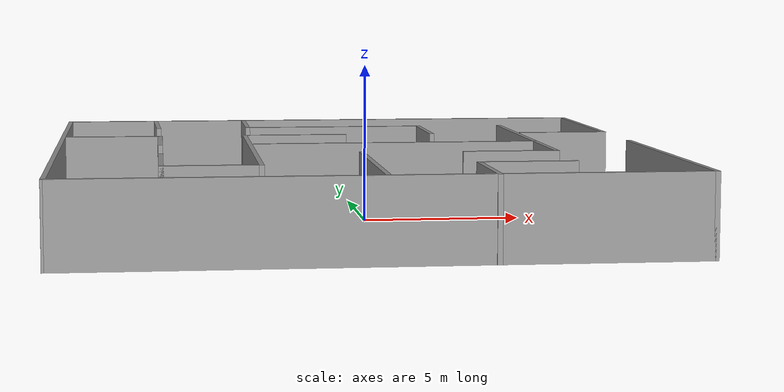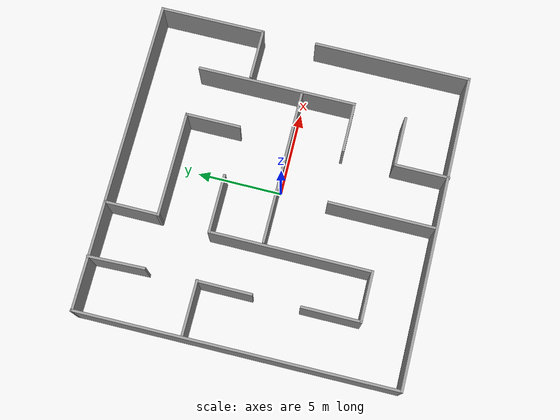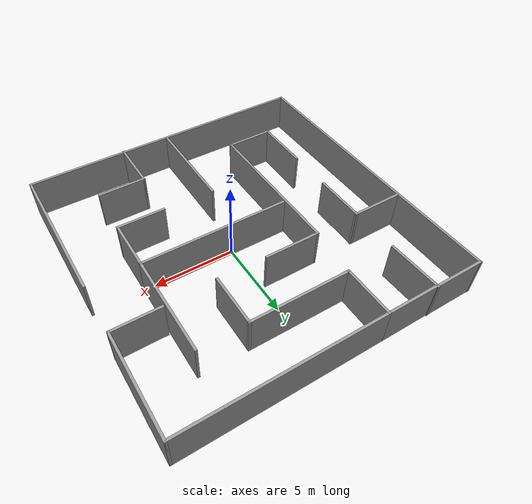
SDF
<?xml version='1.0'?>
<sdf version='1.7'>
  <model name='maze'>
    <pose>-0.530015 0.133481 0 0 -0 0</pose>
    <link name='Wall_10'>
      <collision name='Wall_10_Collision'>
        <geometry>
          <box>
            <size>3.25 0.15 2.5</size>
          </box>
        </geometry>
        <pose>0 0 1.25 0 -0 0</pose>
      </collision>
      <visual name='Wall_10_Visual'>
        <pose>0 0 1.25 0 -0 0</pose>
        <geometry>
          <box>
            <size>3.25 0.15 2.5</size>
          </box>
        </geometry>
        <material>
          <script>
            <uri>file://media/materials/scripts/gazebo.material</uri>
            <name>Gazebo/Grey</name>
          </script>
          <ambient>1 1 1 1</ambient>
        </material>
        <meta>
          <layer>0</layer>
        </meta>
      </visual>
      <pose>-7.67452 9.2343 0 0 -0 0</pose>
    </link>
    <link name='Wall_11'>
      <collision name='Wall_11_Collision'>
        <geometry>
          <box>
            <size>3.37086 0.15 2.5</size>
          </box>
        </geometry>
        <pose>0 0 1.25 0 -0 0</pose>
      </collision>
      <visual name='Wall_11_Visual'>
        <pose>0 0 1.25 0 -0 0</pose>
        <geometry>
          <box>
            <size>3.37086 0.15 2.5</size>
          </box>
        </geometry>
        <material>
          <script>
            <uri>file://media/materials/scripts/gazebo.material</uri>
            <name>Gazebo/Grey</name>
          </script>
          <ambient>1 1 1 1</ambient>
        </material>
        <meta>
          <layer>0</layer>
        </meta>
      </visual>
      <pose>-6.0748 7.64452 0 0 -0 -1.53992</pose>
    </link>
    <link name='Wall_14'>
      <collision name='Wall_14_Collision'>
        <geometry>
          <box>
            <size>3.25 0.15 2.5</size>
          </box>
        </geometry>
        <pose>0 0 1.25 0 -0 0</pose>
      </collision>
      <visual name='Wall_14_Visual'>
        <pose>0 0 1.25 0 -0 0</pose>
        <geometry>
          <box>
            <size>3.25 0.15 2.5</size>
          </box>
        </geometry>
        <material>
          <script>
            <uri>file://media/materials/scripts/gazebo.material</uri>
            <name>Gazebo/Grey</name>
          </script>
          <ambient>1 1 1 1</ambient>
        </material>
        <meta>
          <layer>0</layer>
        </meta>
      </visual>
      <pose>-7.52856 3.02065 0 0 -0 0</pose>
    </link>
    <link name='Wall_17'>
      <collision name='Wall_17_Collision'>
        <geometry>
          <box>
            <size>3.25 0.15 2.5</size>
          </box>
        </geometry>
        <pose>0 0 1.25 0 -0 0</pose>
      </collision>
      <visual name='Wall_17_Visual'>
        <pose>0 0 1.25 0 -0 0</pose>
        <geometry>
          <box>
            <size>3.25 0.15 2.5</size>
          </box>
        </geometry>
        <material>
          <script>
            <uri>file://media/materials/scripts/gazebo.material</uri>
            <name>Gazebo/Grey</name>
          </script>
          <ambient>1 1 1 1</ambient>
        </material>
        <meta>
          <layer>0</layer>
        </meta>
      </visual>
      <pose>-5.99647 1.47898 0 0 -0 -1.5708</pose>
    </link>
    <link name='Wall_19'>
      <collision name='Wall_19_Collision'>
        <geometry>
          <box>
            <size>3.25 0.15 2.5</size>
          </box>
        </geometry>
        <pose>0 0 1.25 0 -0 0</pose>
      </collision>
      <visual name='Wall_19_Visual'>
        <pose>0 0 1.25 0 -0 0</pose>
        <geometry>
          <box>
            <size>3.25 0.15 2.5</size>
          </box>
        </geometry>
        <material>
          <script>
            <uri>file://media/materials/scripts/gazebo.material</uri>
            <name>Gazebo/Grey</name>
          </script>
          <ambient>1 1 1 1</ambient>
        </material>
        <meta>
          <layer>0</layer>
        </meta>
      </visual>
      <pose>3.14644 -7.70646 0 0 -0 1.5708</pose>
    </link>
    <link name='Wall_20'>
      <collision name='Wall_20_Collision'>
        <geometry>
          <box>
            <size>3 0.15 2.5</size>
          </box>
        </geometry>
        <pose>0 0 1.25 0 -0 0</pose>
      </collision>
      <visual name='Wall_20_Visual'>
        <pose>0 0 1.25 0 -0 0</pose>
        <geometry>
          <box>
            <size>3 0.15 2.5</size>
          </box>
        </geometry>
        <material>
          <script>
            <uri>file://media/materials/scripts/gazebo.material</uri>
            <name>Gazebo/Grey</name>
          </script>
          <ambient>1 1 1 1</ambient>
        </material>
        <meta>
          <layer>0</layer>
        </meta>
      </visual>
      <pose>4.57144 -6.15646 0 0 -0 0</pose>
    </link>
    <link name='Wall_22'>
      <collision name='Wall_22_Collision'>
        <geometry>
          <box>
            <size>6.25 0.15 2.5</size>
          </box>
        </geometry>
        <pose>0 0 1.25 0 -0 0</pose>
      </collision>
      <visual name='Wall_22_Visual'>
        <pose>0 0 1.25 0 -0 0</pose>
        <geometry>
          <box>
            <size>6.25 0.15 2.5</size>
          </box>
        </geometry>
        <material>
          <script>
            <uri>file://media/materials/scripts/gazebo.material</uri>
            <name>Gazebo/Grey</name>
          </script>
          <ambient>1 1 1 1</ambient>
        </material>
        <meta>
          <layer>0</layer>
        </meta>
      </visual>
      <pose>0.104949 -6.05612 0 0 -0 1.5708</pose>
    </link>
    <link name='Wall_24'>
      <collision name='Wall_24_Collision'>
        <geometry>
          <box>
            <size>3.5 0.15 2.5</size>
          </box>
        </geometry>
        <pose>0 0 1.25 0 -0 0</pose>
      </collision>
      <visual name='Wall_24_Visual'>
        <pose>0 0 1.25 0 -0 0</pose>
        <geometry>
          <box>
            <size>3.5 0.15 2.5</size>
          </box>
        </geometry>
        <material>
          <script>
            <uri>file://media/materials/scripts/gazebo.material</uri>
            <name>Gazebo/Grey</name>
          </script>
          <ambient>1 1 1 1</ambient>
        </material>
        <meta>
          <layer>0</layer>
        </meta>
      </visual>
      <pose>-6.00384 -4.59142 0 0 -0 -1.5708</pose>
    </link>
    <link name='Wall_25'>
      <collision name='Wall_25_Collision'>
        <geometry>
          <box>
            <size>3 0.15 2.5</size>
          </box>
        </geometry>
        <pose>0 0 1.25 0 -0 0</pose>
      </collision>
      <visual name='Wall_25_Visual'>
        <pose>0 0 1.25 0 -0 0</pose>
        <geometry>
          <box>
            <size>3 0.15 2.5</size>
          </box>
        </geometry>
        <material>
          <script>
            <uri>file://media/materials/scripts/gazebo.material</uri>
            <name>Gazebo/Grey</name>
          </script>
          <ambient>1 1 1 1</ambient>
        </material>
        <meta>
          <layer>0</layer>
        </meta>
      </visual>
      <pose>-4.57884 -6.26642 0 0 -0 0</pose>
    </link>
    <link name='Wall_26'>
      <collision name='Wall_26_Collision'>
        <geometry>
          <box>
            <size>9.5 0.15 2.5</size>
          </box>
        </geometry>
        <pose>0 0 1.25 0 -0 0</pose>
      </collision>
      <visual name='Wall_26_Visual'>
        <pose>0 0 1.25 0 -0 0</pose>
        <geometry>
          <box>
            <size>9.5 0.15 2.5</size>
          </box>
        </geometry>
        <material>
          <script>
            <uri>file://media/materials/scripts/gazebo.material</uri>
            <name>Gazebo/Grey</name>
          </script>
          <ambient>1 1 1 1</ambient>
        </material>
        <meta>
          <layer>0</layer>
        </meta>
      </visual>
      <pose>-3.15384 -1.59142 0 0 -0 1.5708</pose>
    </link>
    <link name='Wall_27'>
      <collision name='Wall_27_Collision'>
        <geometry>
          <box>
            <size>3.5 0.15 2.5</size>
          </box>
        </geometry>
        <pose>0 0 1.25 0 -0 0</pose>
      </collision>
      <visual name='Wall_27_Visual'>
        <pose>0 0 1.25 0 -0 0</pose>
        <geometry>
          <box>
            <size>3.5 0.15 2.5</size>
          </box>
        </geometry>
        <material>
          <script>
            <uri>file://media/materials/scripts/gazebo.material</uri>
            <name>Gazebo/Grey</name>
          </script>
          <ambient>1 1 1 1</ambient>
        </material>
        <meta>
          <layer>0</layer>
        </meta>
      </visual>
      <pose>-1.47884 3.08358 0 0 -0 0</pose>
    </link>
    <link name='Wall_29'>
      <collision name='Wall_29_Collision'>
        <geometry>
          <box>
            <size>9.25 0.15 2.5</size>
          </box>
        </geometry>
        <pose>0 0 1.25 0 -0 0</pose>
      </collision>
      <visual name='Wall_29_Visual'>
        <pose>0 0 1.25 0 -0 0</pose>
        <geometry>
          <box>
            <size>9.25 0.15 2.5</size>
          </box>
        </geometry>
        <material>
          <script>
            <uri>file://media/materials/scripts/gazebo.material</uri>
            <name>Gazebo/Grey</name>
          </script>
          <ambient>1 1 1 1</ambient>
        </material>
        <meta>
          <layer>0</layer>
        </meta>
      </visual>
      <pose>1.58032 -0.003615 0 0 -0 0</pose>
    </link>
    <link name='Wall_30'>
      <collision name='Wall_30_Collision'>
        <geometry>
          <box>
            <size>6.25 0.15 2.5</size>
          </box>
        </geometry>
        <pose>0 0 1.25 0 -0 0</pose>
      </collision>
      <visual name='Wall_30_Visual'>
        <pose>0 0 1.25 0 -0 0</pose>
        <geometry>
          <box>
            <size>6.25 0.15 2.5</size>
          </box>
        </geometry>
        <material>
          <script>
            <uri>file://media/materials/scripts/gazebo.material</uri>
            <name>Gazebo/Grey</name>
          </script>
          <ambient>1 1 1 1</ambient>
        </material>
        <meta>
          <layer>0</layer>
        </meta>
      </visual>
      <pose>6.13033 3.04638 0 0 -0 1.5708</pose>
    </link>
    <link name='Wall_34'>
      <collision name='Wall_34_Collision'>
        <geometry>
          <box>
            <size>3.25 0.15 2.5</size>
          </box>
        </geometry>
        <pose>0 0 1.25 0 -0 0</pose>
      </collision>
      <visual name='Wall_34_Visual'>
        <pose>0 0 1.25 0 -0 0</pose>
        <geometry>
          <box>
            <size>3.25 0.15 2.5</size>
          </box>
        </geometry>
        <material>
          <script>
            <uri>file://media/materials/scripts/gazebo.material</uri>
            <name>Gazebo/Grey</name>
          </script>
          <ambient>1 1 1 1</ambient>
        </material>
        <meta>
          <layer>0</layer>
        </meta>
      </visual>
      <pose>6.13033 -1.55361 0 0 -0 -1.5708</pose>
    </link>
    <link name='Wall_35'>
      <collision name='Wall_35_Collision'>
        <geometry>
          <box>
            <size>3 0.15 2.5</size>
          </box>
        </geometry>
        <pose>0 0 1.25 0 -0 0</pose>
      </collision>
      <visual name='Wall_35_Visual'>
        <pose>0 0 1.25 0 -0 0</pose>
        <geometry>
          <box>
            <size>3 0.15 2.5</size>
          </box>
        </geometry>
        <material>
          <script>
            <uri>file://media/materials/scripts/gazebo.material</uri>
            <name>Gazebo/Grey</name>
          </script>
          <ambient>1 1 1 1</ambient>
        </material>
        <meta>
          <layer>0</layer>
        </meta>
      </visual>
      <pose>4.70533 -3.10362 0 0 -0 3.14159</pose>
    </link>
    <link name='Wall_40'>
      <collision name='Wall_40_Collision'>
        <geometry>
          <box>
            <size>3.25 0.15 2.5</size>
          </box>
        </geometry>
        <pose>0 0 1.25 0 -0 0</pose>
      </collision>
      <visual name='Wall_40_Visual'>
        <pose>0 0 1.25 0 -0 0</pose>
        <geometry>
          <box>
            <size>3.25 0.15 2.5</size>
          </box>
        </geometry>
        <material>
          <script>
            <uri>file://media/materials/scripts/gazebo.material</uri>
            <name>Gazebo/Grey</name>
          </script>
          <ambient>1 1 1 1</ambient>
        </material>
        <meta>
          <layer>0</layer>
        </meta>
      </visual>
      <pose>3.20402 4.5593 0 0 -0 1.5708</pose>
    </link>
    <link name='Wall_41'>
      <collision name='Wall_41_Collision'>
        <geometry>
          <box>
            <size>6.25 0.15 2.5</size>
          </box>
        </geometry>
        <pose>0 0 1.25 0 -0 0</pose>
      </collision>
      <visual name='Wall_41_Visual'>
        <pose>0 0 1.25 0 -0 0</pose>
        <geometry>
          <box>
            <size>6.25 0.15 2.5</size>
          </box>
        </geometry>
        <material>
          <script>
            <uri>file://media/materials/scripts/gazebo.material</uri>
            <name>Gazebo/Grey</name>
          </script>
          <ambient>1 1 1 1</ambient>
        </material>
        <meta>
          <layer>0</layer>
        </meta>
      </visual>
      <pose>0.154017 6.1093 0 0 -0 3.14159</pose>
    </link>
    <link name='Wall_42'>
      <collision name='Wall_42_Collision'>
        <geometry>
          <box>
            <size>3.25 0.15 2.5</size>
          </box>
        </geometry>
        <pose>0 0 1.25 0 -0 0</pose>
      </collision>
      <visual name='Wall_42_Visual'>
        <pose>0 0 1.25 0 -0 0</pose>
        <geometry>
          <box>
            <size>3.25 0.15 2.5</size>
          </box>
        </geometry>
        <material>
          <script>
            <uri>file://media/materials/scripts/gazebo.material</uri>
            <name>Gazebo/Grey</name>
          </script>
          <ambient>1 1 1 1</ambient>
        </material>
        <meta>
          <layer>0</layer>
        </meta>
      </visual>
      <pose>-2.89598 7.6593 0 0 -0 1.5708</pose>
    </link>
    <link name='Wall_43'>
      <collision name='Wall_43_Collision'>
        <geometry>
          <box>
            <size>12.25 0.15 2.5</size>
          </box>
        </geometry>
        <pose>0 0 1.25 0 -0 0</pose>
      </collision>
      <visual name='Wall_43_Visual'>
        <pose>0 0 1.25 0 -0 0</pose>
        <geometry>
          <box>
            <size>12.25 0.15 2.5</size>
          </box>
        </geometry>
        <material>
          <script>
            <uri>file://media/materials/scripts/gazebo.material</uri>
            <name>Gazebo/Grey</name>
          </script>
          <ambient>1 1 1 1</ambient>
        </material>
        <meta>
          <layer>0</layer>
        </meta>
      </visual>
      <pose>3.15402 9.2093 0 0 -0 0</pose>
    </link>
    <link name='Wall_44'>
      <collision name='Wall_44_Collision'>
        <geometry>
          <box>
            <size>6.25 0.15 2.5</size>
          </box>
        </geometry>
        <pose>0 0 1.25 0 -0 0</pose>
      </collision>
      <visual name='Wall_44_Visual'>
        <pose>0 0 1.25 0 -0 0</pose>
        <geometry>
          <box>
            <size>6.25 0.15 2.5</size>
          </box>
        </geometry>
        <material>
          <script>
            <uri>file://media/materials/scripts/gazebo.material</uri>
            <name>Gazebo/Grey</name>
          </script>
          <ambient>1 1 1 1</ambient>
        </material>
        <meta>
          <layer>0</layer>
        </meta>
      </visual>
      <pose>9.20402 6.1593 0 0 -0 -1.5708</pose>
    </link>
    <link name='Wall_45'>
      <collision name='Wall_45_Collision'>
        <geometry>
          <box>
            <size>3 0.15 2.5</size>
          </box>
        </geometry>
        <pose>0 0 1.25 0 -0 0</pose>
      </collision>
      <visual name='Wall_45_Visual'>
        <pose>0 0 1.25 0 -0 0</pose>
        <geometry>
          <box>
            <size>3 0.15 2.5</size>
          </box>
        </geometry>
        <material>
          <script>
            <uri>file://media/materials/scripts/gazebo.material</uri>
            <name>Gazebo/Grey</name>
          </script>
          <ambient>1 1 1 1</ambient>
        </material>
        <meta>
          <layer>0</layer>
        </meta>
      </visual>
      <pose>7.77902 3.1093 0 0 -0 3.14159</pose>
    </link>
    <link name='Wall_50'>
      <collision name='Wall_50_Collision'>
        <geometry>
          <box>
            <size>3.25 0.15 2.5</size>
          </box>
        </geometry>
        <pose>0 0 1.25 0 -0 0</pose>
      </collision>
      <visual name='Wall_50_Visual'>
        <pose>0 0 1.25 0 -0 0</pose>
        <geometry>
          <box>
            <size>3.25 0.15 2.5</size>
          </box>
        </geometry>
        <material>
          <script>
            <uri>file://media/materials/scripts/gazebo.material</uri>
            <name>Gazebo/Grey</name>
          </script>
          <ambient>1 1 1 1</ambient>
        </material>
        <meta>
          <layer>0</layer>
        </meta>
      </visual>
      <pose>-4.44598 9.2093 0 0 -0 3.14159</pose>
    </link>
    <link name='Wall_6'>
      <collision name='Wall_6_Collision'>
        <geometry>
          <box>
            <size>18.5 0.15 2.5</size>
          </box>
        </geometry>
        <pose>0 0 1.25 0 -0 0</pose>
      </collision>
      <visual name='Wall_6_Visual'>
        <pose>0 0 1.25 0 -0 0</pose>
        <geometry>
          <box>
            <size>18.5 0.15 2.5</size>
          </box>
        </geometry>
        <material>
          <script>
            <uri>file://media/materials/scripts/gazebo.material</uri>
            <name>Gazebo/Grey</name>
          </script>
          <ambient>1 1 1 1</ambient>
        </material>
        <meta>
          <layer>0</layer>
        </meta>
      </visual>
      <pose>0.049919 -9.21514 0 0 -0 0</pose>
    </link>
    <link name='Wall_7'>
      <collision name='Wall_7_Collision'>
        <geometry>
          <box>
            <size>9.25 0.15 2.5</size>
          </box>
        </geometry>
        <pose>0 0 1.25 0 -0 0</pose>
      </collision>
      <visual name='Wall_7_Visual'>
        <pose>0 0 1.25 0 -0 0</pose>
        <geometry>
          <box>
            <size>9.25 0.15 2.5</size>
          </box>
        </geometry>
        <material>
          <script>
            <uri>file://media/materials/scripts/gazebo.material</uri>
            <name>Gazebo/Grey</name>
          </script>
          <ambient>1 1 1 1</ambient>
        </material>
        <meta>
          <layer>0</layer>
        </meta>
      </visual>
      <pose>9.22492 -4.66514 0 0 -0 1.5708</pose>
    </link>
    <link name='Wall_9'>
      <collision name='Wall_9_Collision'>
        <geometry>
          <box>
            <size>18.6196 0.15 2.5</size>
          </box>
        </geometry>
        <pose>0 0 1.25 0 -0 0</pose>
      </collision>
      <visual name='Wall_9_Visual'>
        <pose>0 0 1.25 0 -0 0</pose>
        <geometry>
          <box>
            <size>18.6196 0.15 2.5</size>
          </box>
        </geometry>
        <material>
          <script>
            <uri>file://media/materials/scripts/gazebo.material</uri>
            <name>Gazebo/Grey</name>
          </script>
          <ambient>1 1 1 1</ambient>
        </material>
        <meta>
          <layer>0</layer>
        </meta>
      </visual>
      <pose>-9.1748 0.019524 0 0 -0 1.57618</pose>
    </link>
    <static>1</static>
  </model>
</sdf>
